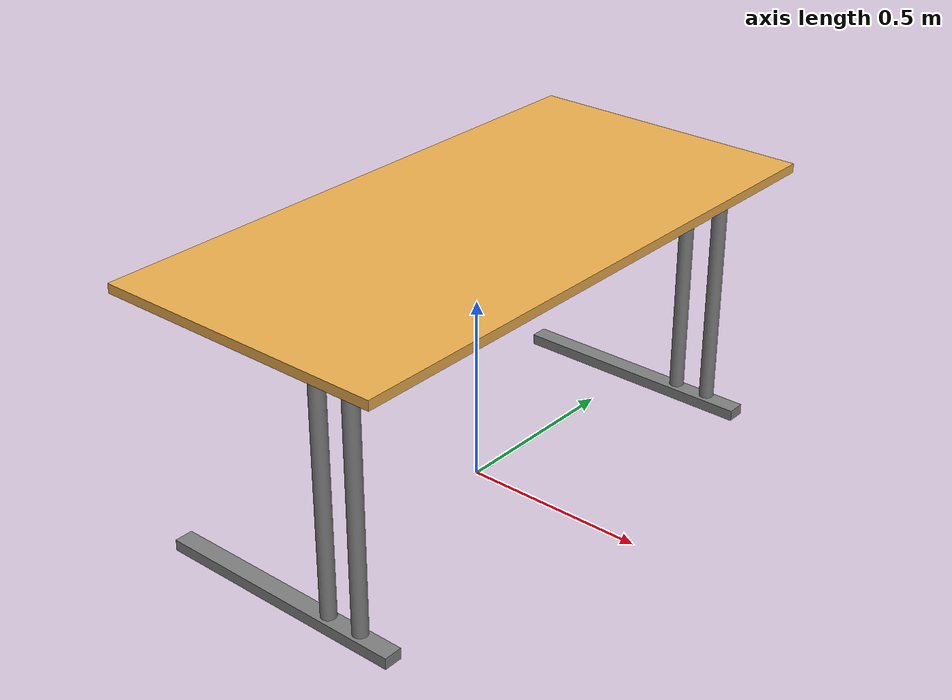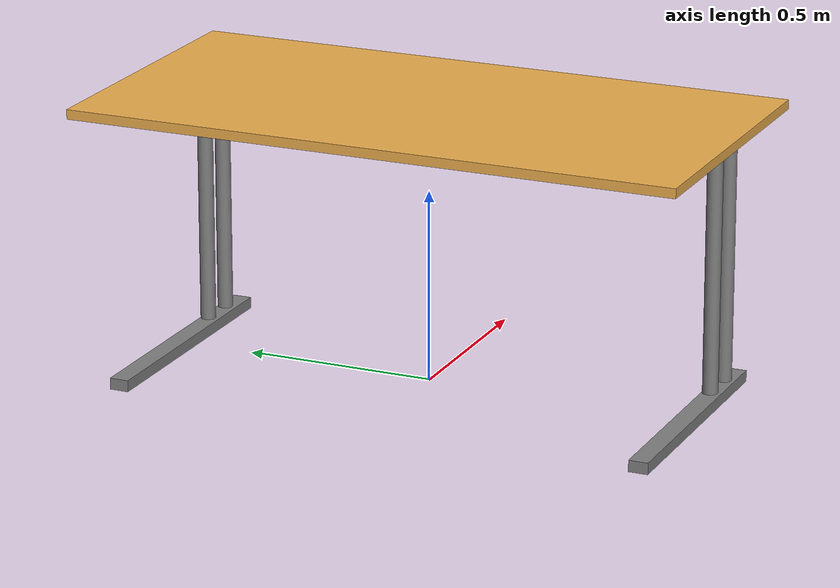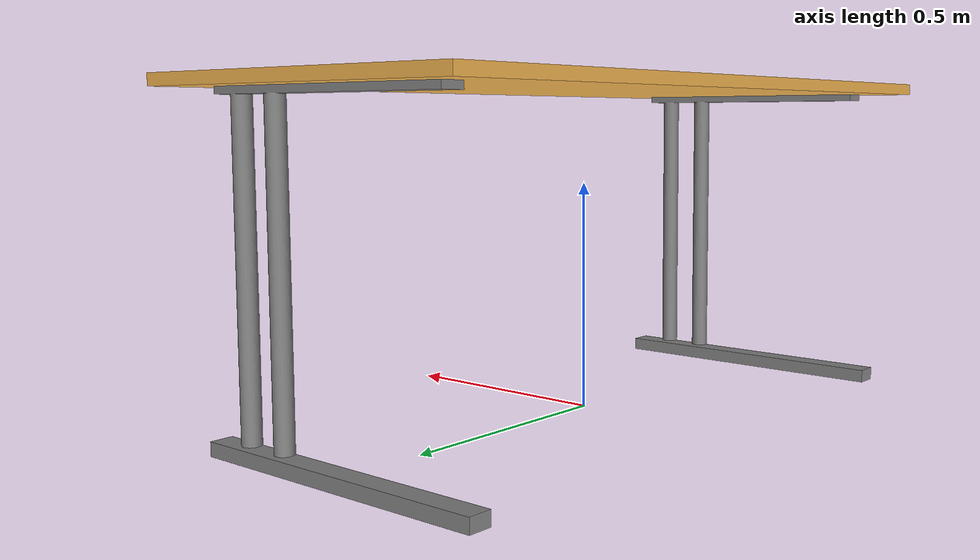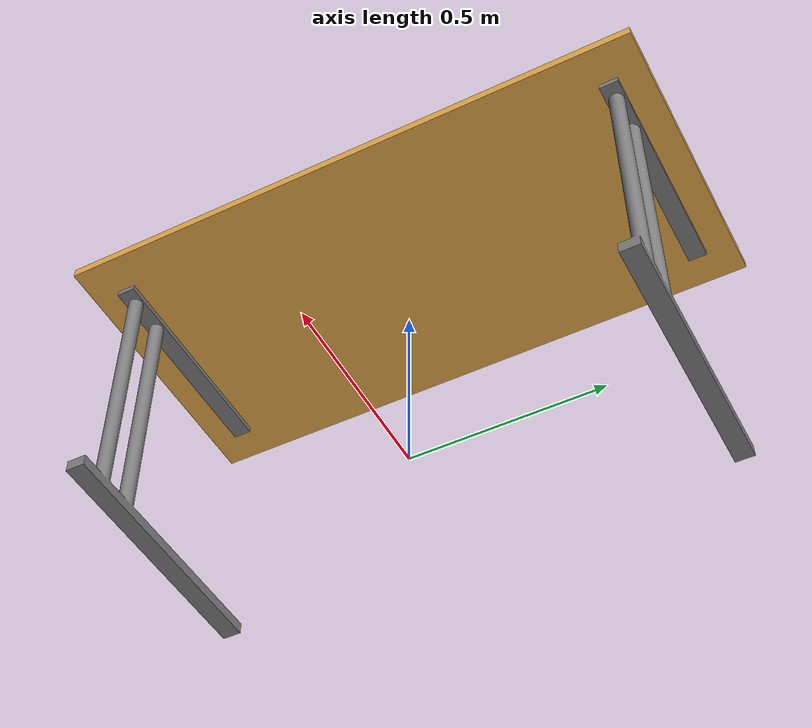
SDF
<?xml version="1.0" ?>
<sdf version="1.6">
  <model name="clf_table_long">
    <static>true</static>
    <link name="link">
      <collision name="wood_collision">
        <geometry>
          <mesh>
            <uri>model://clf_table_long/meshes/clf_table_long_wood.dae</uri>
          </mesh>
        </geometry>
      </collision>
      <visual name="wood_visual">
        <material>
          <ambient>0.92 0.68 0.3 1.0</ambient>
          <diffuse>0.92 0.68 0.3 1.0</diffuse>
          <specular>0 0 0 0</specular>
          <emissive>0 0 0 1</emissive>
        </material>
        <geometry>
          <mesh>
            <uri>model://clf_table_long/meshes/clf_table_long_wood.dae</uri>
          </mesh>
        </geometry>
      </visual>
      <collision name="metal_collision">
        <geometry>
          <mesh>
            <uri>model://clf_table_long/meshes/clf_table_long_metal.dae</uri>
          </mesh>
        </geometry>
      </collision>
      <visual name="metal_visual">
        <material>
          <ambient>0.5 0.5 0.5 1.0</ambient>
          <diffuse>0.5 0.5 0.5 1.0</diffuse>
          <specular>0.5 0.5 0.5 64</specular>
          <emissive>0 0 0 1</emissive>
        </material>
        <geometry>
          <mesh>
            <uri>model://clf_table_long/meshes/clf_table_long_metal.dae</uri>
          </mesh>
        </geometry>
      </visual>
    </link>
  </model>
</sdf>
